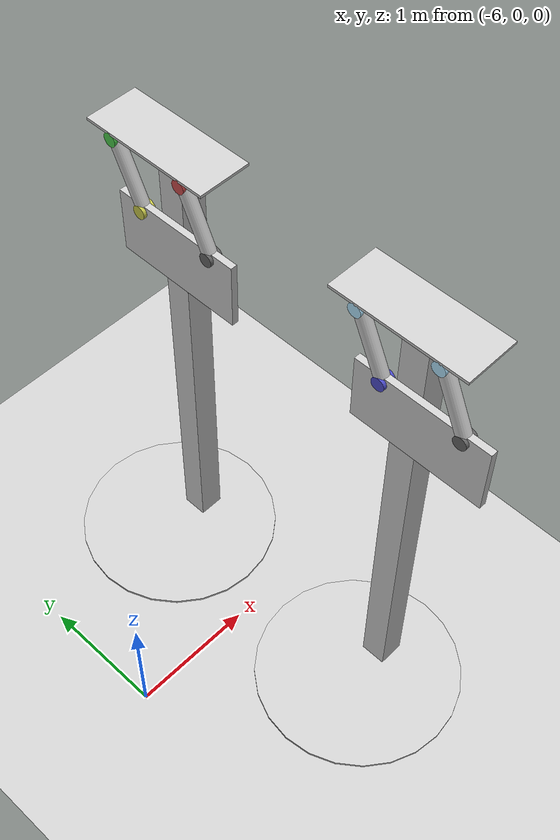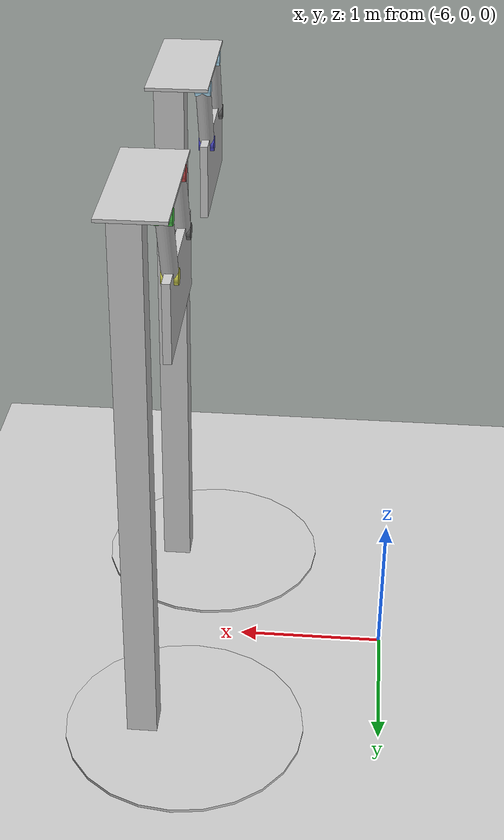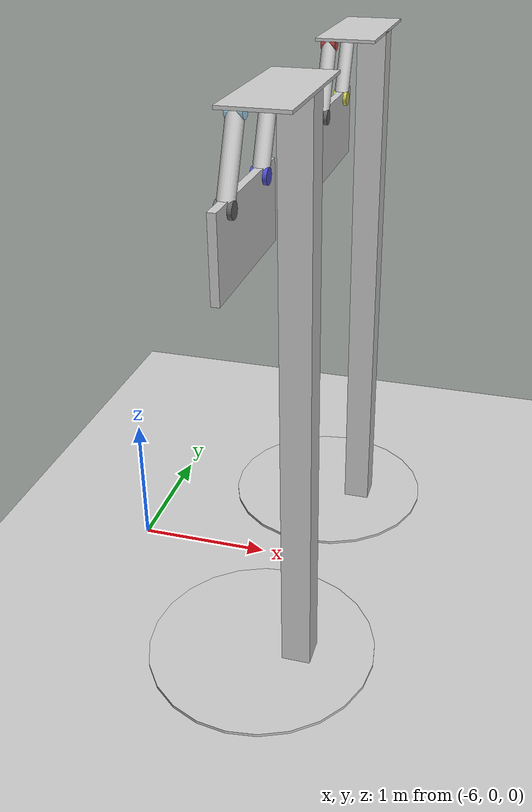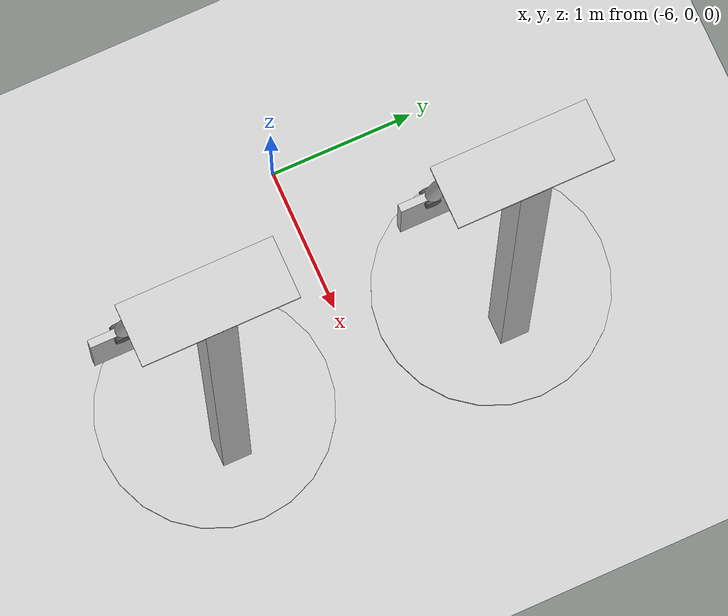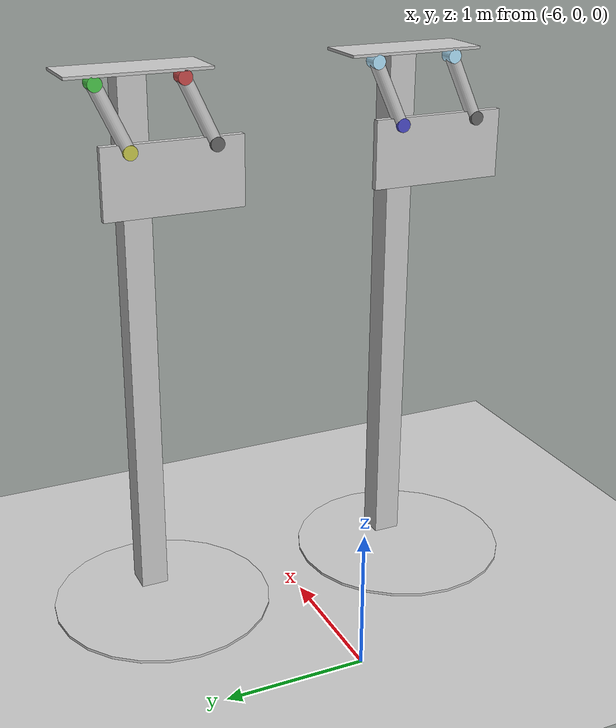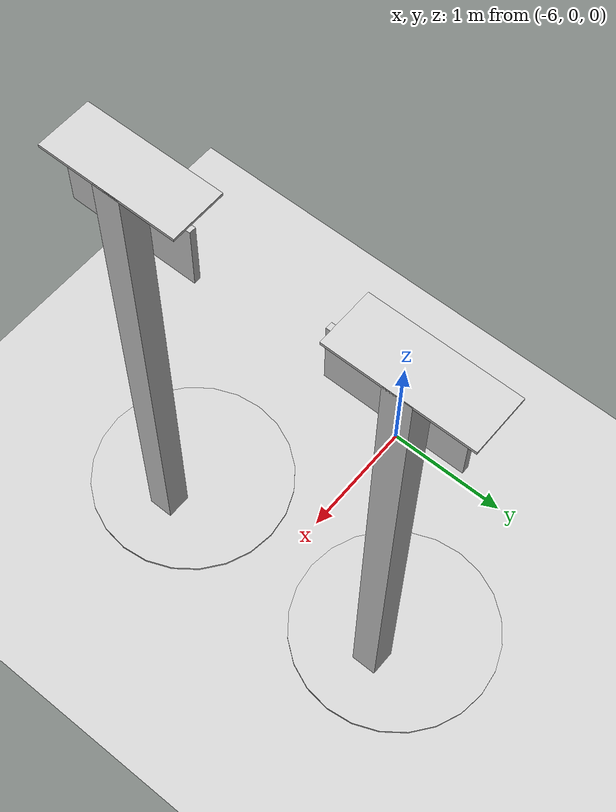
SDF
<sdf version="1.11">
 <world name="harmonic_mimic_mechanisms">
  <physics name="1ms" type="ignored">
   <max_step_size>0.001</max_step_size>
   <real_time_factor>1.0</real_time_factor>
  </physics>
  <plugin filename="gz-sim-physics-system" name="gz::sim::systems::Physics"/>
  <plugin filename="gz-sim-user-commands-system" name="gz::sim::systems::UserCommands"/>
  <plugin filename="gz-sim-scene-broadcaster-system" name="gz::sim::systems::SceneBroadcaster"/>
  <plugin filename="gz-sim-apply-link-wrench-system" name="gz::sim::systems::ApplyLinkWrench"/>
  <light type="directional" name="sun">
   <pose>0 0 10 0 0 0</pose>
   <diffuse>0.8 0.8 0.8 1</diffuse>
   <specular>0.2 0.2 0.2 1</specular>
   <attenuation>
    <range>1000</range>
    <constant>0.9</constant>
    <linear>0.01</linear>
    <quadratic>0.001</quadratic>
   </attenuation>
   <direction>0.5 0.1 -0.9</direction>
  </light>
  <model name="ground_plane">
   <static>true</static>
   <link name="link">
    <collision name="collision">
     <geometry><plane><normal>0 0 1</normal><size>100 100</size></plane></geometry>
    </collision>
    <visual name="visual">
     <geometry><plane><normal>0 0 1</normal><size>100 100</size></plane></geometry>
     <material>
      <ambient>0.8 0.8 0.8 1</ambient>
      <diffuse>0.8 0.8 0.8 1</diffuse>
      <specular>0.8 0.8 0.8 1</specular>
     </material>
    </visual>
   </link>
  </model>
  <model name="four_bar_linkage_mimic">
   <pose degrees="true">-4.7 -1 0 0 0 180</pose>
   <frame name="base_plate_center" attached_to="base"><pose>0 0 0.01 0 0 0</pose></frame>
   <frame name="base_pole_center" attached_to="base_plate_center"><pose>-0.275 0 1.95 0 0 0</pose></frame>
   <frame name="base_pole_top" attached_to="base_pole_center"><pose>0.1 0 1.95 0 0 0</pose></frame>
   <link name="base">
    <inertial>
     <pose>-0.188749 0 0.75813399999999997 -0.13567899999999999 0 1.5708</pose>
     <mass>2500</mass>
     <inertia><ixx>154.202</ixx><ixy>0</ixy><ixz>0</ixz><iyy>152.286</iyy><iyz>0</iyz><izz>28.8249</izz></inertia>
    </inertial>
    <collision name="col_plate_on_ground">
     <pose relative_to="base_plate_center"/>
     <geometry><cylinder><radius>0.8</radius><length>0.02</length></cylinder></geometry>
    </collision>
    <visual name="vis_plate_on_ground">
     <pose relative_to="base_plate_center"/>
     <geometry><cylinder><radius>0.8</radius><length>0.02</length></cylinder></geometry>
     <material>
      <ambient>0.8 0.8 0.8 1</ambient>
      <diffuse>0.8 0.8 0.8 1</diffuse>
      <specular>0.8 0.8 0.8 1</specular>
     </material>
    </visual>
    <collision name="col_pole">
     <pose relative_to="base_pole_center"/>
     <geometry><box><size>0.2 0.2 3.9</size></box></geometry>
    </collision>
    <visual name="vis_pole">
     <pose relative_to="base_pole_center"/>
     <geometry><box><size>0.2 0.2 3.9</size></box></geometry>
     <material>
      <ambient>0.8 0.8 0.8 1</ambient>
      <diffuse>0.8 0.8 0.8 1</diffuse>
      <specular>0.8 0.8 0.8 1</specular>
     </material>
    </visual>
    <collision name="col_top">
     <pose relative_to="base_pole_top"/>
     <geometry><box><size>0.4 1.0 0.02</size></box></geometry>
    </collision>
    <visual name="vis_top">
     <pose relative_to="base_pole_top"/>
     <geometry><box><size>0.4 1.0 0.02</size></box></geometry>
     <material>
      <ambient>0.8 0.8 0.8 1</ambient>
      <diffuse>0.8 0.8 0.8 1</diffuse>
      <specular>0.8 0.8 0.8 1</specular>
     </material>
    </visual>
   </link>
   <frame name="base_top_left_mount" attached_to="base_pole_top"><pose>0 -0.3 -0.05 0 0 0</pose></frame>
   <frame name="base_top_right_mount" attached_to="base_pole_top"><pose>0 +0.3 -0.05 0 0 0</pose></frame>
   <frame name="upper_left_link_lower_mount" attached_to="upper_left_link"><pose>0 0 0.5 0 0 0</pose></frame>
   <frame name="upper_right_link_lower_mount" attached_to="upper_right_link"><pose>0 0 0.5 0 0 0</pose></frame>
   <link name="upper_left_link">
    <pose degrees="true" relative_to="base_top_left_mount">0.15 0 0 -155 0 0</pose>
    <inertial auto="true"/>
    <collision name="col_upper_joint">
     <pose degrees="true">0 0 0 0 90 0</pose>
     <geometry><cylinder><radius>0.05</radius><length>0.1</length></cylinder></geometry>
    </collision>
    <visual name="vis_upper_joint">
     <pose degrees="true">0 0 0 0 90 0</pose>
     <geometry><cylinder><radius>0.05</radius><length>0.1</length></cylinder></geometry>
     <material>
      <ambient>0.7 0.9 1.0 1</ambient>
      <diffuse>0.7 0.9 1.0 1</diffuse>
      <specular>0.4 0.4 0.4 1</specular>
      <emissive>0.0 0.1 0.1 1</emissive>
     </material>
    </visual>
    <collision name="col_bob">
     <pose degrees="true" relative_to="upper_left_link_lower_mount">0 0 0 0 90 0</pose>
     <geometry><cylinder><radius>0.05</radius><length>0.1</length></cylinder></geometry>
    </collision>
    <visual name="vis_bob">
     <pose degrees="true" relative_to="upper_left_link_lower_mount">0 0 0 0 90 0</pose>
     <geometry><cylinder><radius>0.05</radius><length>0.1</length></cylinder></geometry>
     <material>
      <ambient>0.3 0.3 0.8 1</ambient>
      <diffuse>0.3 0.3 0.8 1</diffuse>
      <specular>0.4 0.4 0.4 1</specular>
      <emissive>0.0 0.0 0.1 1</emissive>
     </material>
    </visual>
    <collision name="col_long_cylinder">
     <pose>0 0 0.25 0 0 0</pose>
     <density>5e3</density>
     <geometry><cylinder><radius>0.05</radius><length>0.5</length></cylinder></geometry>
    </collision>
    <visual name="vis_long_cylinder">
     <pose>0 0 0.25 0 0 0</pose>
     <geometry><cylinder><radius>0.05</radius><length>0.5</length></cylinder></geometry>
     <material>
      <ambient>0.8 0.8 0.8 1</ambient>
      <diffuse>0.8 0.8 0.8 1</diffuse>
      <specular>0.8 0.8 0.8 1</specular>
     </material>
    </visual>
   </link>
   <joint name="upper_left_joint" type="revolute">
    <parent>base</parent>
    <child>upper_left_link</child>
    <axis><xyz>1.0 0 0</xyz></axis>
   </joint>
   <link name="upper_right_link">
    <pose degrees="true" relative_to="base_top_right_mount">0.15 0 0 -155 0 0</pose>
    <inertial auto="true"/>
    <collision name="col_upper_joint">
     <pose degrees="true">0 0 0 0 90 0</pose>
     <geometry><cylinder><radius>0.05</radius><length>0.1</length></cylinder></geometry>
    </collision>
    <visual name="vis_upper_joint">
     <pose degrees="true">0 0 0 0 90 0</pose>
     <geometry><cylinder><radius>0.05</radius><length>0.1</length></cylinder></geometry>
     <material>
      <ambient>0.7 0.9 1.0 1</ambient>
      <diffuse>0.7 0.9 1.0 1</diffuse>
      <specular>0.4 0.4 0.4 1</specular>
      <emissive>0.0 0.1 0.1 1</emissive>
     </material>
    </visual>
    <collision name="col_bob">
     <pose degrees="true" relative_to="upper_right_link_lower_mount">0 0 0 0 90 0</pose>
     <geometry><cylinder><radius>0.05</radius><length>0.1</length></cylinder></geometry>
    </collision>
    <visual name="vis_bob">
     <pose degrees="true" relative_to="upper_right_link_lower_mount">0 0 0 0 90 0</pose>
     <geometry><cylinder><radius>0.05</radius><length>0.1</length></cylinder></geometry>
     <material>
      <ambient>0.4 0.4 0.4 1</ambient>
      <diffuse>0.4 0.4 0.4 1</diffuse>
      <specular>0.4 0.4 0.4 1</specular>
     </material>
    </visual>
    <collision name="col_long_cylinder">
     <pose>0 0 0.25 0 0 0</pose>
     <density>5e3</density>
     <geometry><cylinder><radius>0.05</radius><length>0.5</length></cylinder></geometry>
    </collision>
    <visual name="vis_long_cylinder">
     <pose>0 0 0.25 0 0 0</pose>
     <geometry><cylinder><radius>0.05</radius><length>0.5</length></cylinder></geometry>
     <material>
      <ambient>0.8 0.8 0.8 1</ambient>
      <diffuse>0.8 0.8 0.8 1</diffuse>
      <specular>0.8 0.8 0.8 1</specular>
     </material>
    </visual>
   </link>
   <joint name="upper_right_joint" type="revolute">
    <parent>base</parent>
    <child>upper_right_link</child>
    <axis><xyz>1.0 0 0</xyz><mimic joint="upper_left_joint"><multiplier>1.0</multiplier></mimic></axis>
   </joint>
   <joint name="lower_left_joint" type="revolute">
    <pose degrees="true" relative_to="upper_left_link_lower_mount">0 0 0 -25 0 0</pose>
    <parent>upper_left_link</parent>
    <child>lower_link</child>
    <axis><xyz>1.0 0 0</xyz><mimic joint="upper_left_joint"><multiplier>-1.0</multiplier></mimic></axis>
   </joint>
   <link name="lower_link">
    <pose degrees="true" relative_to="lower_left_joint">0 -0.3 0.2 0 0 0</pose>
    <inertial auto="true"/>
    <collision name="col_box"><geometry><box><size>0.05 1.0 0.5</size></box></geometry></collision>
    <visual name="vis_upper_joint">
     <geometry><box><size>0.05 1.0 0.5</size></box></geometry>
     <material>
      <ambient>0.8 0.8 0.8 1</ambient>
      <diffuse>0.8 0.8 0.8 1</diffuse>
      <specular>0.8 0.8 0.8 1</specular>
     </material>
    </visual>
   </link>
  </model>
  <model name="four_bar_linkage_without_mimic">
   <pose degrees="true">-4.7 1 0 0 0 180</pose>
   <frame name="base_plate_center" attached_to="base"><pose>0 0 0.01 0 0 0</pose></frame>
   <frame name="base_pole_center" attached_to="base_plate_center"><pose>-0.275 0 1.95 0 0 0</pose></frame>
   <frame name="base_pole_top" attached_to="base_pole_center"><pose>0.1 0 1.95 0 0 0</pose></frame>
   <link name="base">
    <inertial>
     <pose>-0.188749 0 0.75813399999999997 -0.13567899999999999 0 1.5708</pose>
     <mass>2500</mass>
     <inertia><ixx>154.202</ixx><ixy>0</ixy><ixz>0</ixz><iyy>152.286</iyy><iyz>0</iyz><izz>28.8249</izz></inertia>
    </inertial>
    <collision name="col_plate_on_ground">
     <pose relative_to="base_plate_center"/>
     <geometry><cylinder><radius>0.8</radius><length>0.02</length></cylinder></geometry>
    </collision>
    <visual name="vis_plate_on_ground">
     <pose relative_to="base_plate_center"/>
     <geometry><cylinder><radius>0.8</radius><length>0.02</length></cylinder></geometry>
     <material>
      <ambient>0.8 0.8 0.8 1</ambient>
      <diffuse>0.8 0.8 0.8 1</diffuse>
      <specular>0.8 0.8 0.8 1</specular>
     </material>
    </visual>
    <collision name="col_pole">
     <pose relative_to="base_pole_center"/>
     <geometry><box><size>0.2 0.2 3.9</size></box></geometry>
    </collision>
    <visual name="vis_pole">
     <pose relative_to="base_pole_center"/>
     <geometry><box><size>0.2 0.2 3.9</size></box></geometry>
     <material>
      <ambient>0.8 0.8 0.8 1</ambient>
      <diffuse>0.8 0.8 0.8 1</diffuse>
      <specular>0.8 0.8 0.8 1</specular>
     </material>
    </visual>
    <collision name="col_top">
     <pose relative_to="base_pole_top"/>
     <geometry><box><size>0.4 1.0 0.02</size></box></geometry>
    </collision>
    <visual name="vis_top">
     <pose relative_to="base_pole_top"/>
     <geometry><box><size>0.4 1.0 0.02</size></box></geometry>
     <material>
      <ambient>0.8 0.8 0.8 1</ambient>
      <diffuse>0.8 0.8 0.8 1</diffuse>
      <specular>0.8 0.8 0.8 1</specular>
     </material>
    </visual>
   </link>
   <frame name="base_top_left_mount" attached_to="base_pole_top"><pose>0 -0.3 -0.05 0 0 0</pose></frame>
   <frame name="base_top_right_mount" attached_to="base_pole_top"><pose>0 +0.3 -0.05 0 0 0</pose></frame>
   <frame name="upper_left_link_lower_mount" attached_to="upper_left_link"><pose>0 0 0.5 0 0 0</pose></frame>
   <frame name="upper_right_link_lower_mount" attached_to="upper_right_link"><pose>0 0 0.5 0 0 0</pose></frame>
   <link name="upper_left_link">
    <pose degrees="true" relative_to="base_top_left_mount">0.15 0 0 -155 0 0</pose>
    <inertial auto="true"/>
    <collision name="col_upper_joint">
     <pose degrees="true">0 0 0 0 90 0</pose>
     <geometry><cylinder><radius>0.05</radius><length>0.1</length></cylinder></geometry>
    </collision>
    <visual name="vis_upper_joint">
     <pose degrees="true">0 0 0 0 90 0</pose>
     <geometry><cylinder><radius>0.05</radius><length>0.1</length></cylinder></geometry>
     <material>
      <ambient>0.3 0.8 0.3 1</ambient>
      <diffuse>0.3 0.8 0.3 1</diffuse>
      <specular>0.4 0.4 0.4 1</specular>
      <emissive>0.0 0.1 0.0 1</emissive>
     </material>
    </visual>
    <collision name="col_bob">
     <pose degrees="true" relative_to="upper_left_link_lower_mount">0 0 0 0 90 0</pose>
     <geometry><cylinder><radius>0.05</radius><length>0.1</length></cylinder></geometry>
    </collision>
    <visual name="vis_bob">
     <pose degrees="true" relative_to="upper_left_link_lower_mount">0 0 0 0 90 0</pose>
     <geometry><cylinder><radius>0.05</radius><length>0.1</length></cylinder></geometry>
     <material>
      <ambient>0.8 0.8 0.3 1</ambient>
      <diffuse>0.8 0.8 0.3 1</diffuse>
      <specular>0.4 0.4 0.4 1</specular>
      <emissive>0.1 0.1 0.0 1</emissive>
     </material>
    </visual>
    <collision name="col_long_cylinder">
     <pose>0 0 0.25 0 0 0</pose>
     <density>5e3</density>
     <geometry><cylinder><radius>0.05</radius><length>0.5</length></cylinder></geometry>
    </collision>
    <visual name="vis_long_cylinder">
     <pose>0 0 0.25 0 0 0</pose>
     <geometry><cylinder><radius>0.05</radius><length>0.5</length></cylinder></geometry>
     <material>
      <ambient>0.8 0.8 0.8 1</ambient>
      <diffuse>0.8 0.8 0.8 1</diffuse>
      <specular>0.8 0.8 0.8 1</specular>
     </material>
    </visual>
   </link>
   <joint name="upper_left_joint" type="revolute">
    <parent>base</parent>
    <child>upper_left_link</child>
    <axis><xyz>1.0 0 0</xyz></axis>
   </joint>
   <link name="upper_right_link">
    <pose degrees="true" relative_to="base_top_right_mount">0.15 0 0 -155 0 0</pose>
    <inertial auto="true"/>
    <collision name="col_upper_joint">
     <pose degrees="true">0 0 0 0 90 0</pose>
     <geometry><cylinder><radius>0.05</radius><length>0.1</length></cylinder></geometry>
    </collision>
    <visual name="vis_upper_joint">
     <pose degrees="true">0 0 0 0 90 0</pose>
     <geometry><cylinder><radius>0.05</radius><length>0.1</length></cylinder></geometry>
     <material>
      <ambient>0.8 0.3 0.3 1</ambient>
      <diffuse>0.8 0.3 0.3 1</diffuse>
      <specular>0.4 0.4 0.4 1</specular>
      <emissive>0.1 0.0 0.0 1</emissive>
     </material>
    </visual>
    <collision name="col_bob">
     <pose degrees="true" relative_to="upper_right_link_lower_mount">0 0 0 0 90 0</pose>
     <geometry><cylinder><radius>0.05</radius><length>0.1</length></cylinder></geometry>
    </collision>
    <visual name="vis_bob">
     <pose degrees="true" relative_to="upper_right_link_lower_mount">0 0 0 0 90 0</pose>
     <geometry><cylinder><radius>0.05</radius><length>0.1</length></cylinder></geometry>
     <material>
      <ambient>0.4 0.4 0.4 1</ambient>
      <diffuse>0.4 0.4 0.4 1</diffuse>
      <specular>0.4 0.4 0.4 1</specular>
     </material>
    </visual>
    <collision name="col_long_cylinder">
     <pose>0 0 0.25 0 0 0</pose>
     <density>5e3</density>
     <geometry><cylinder><radius>0.05</radius><length>0.5</length></cylinder></geometry>
    </collision>
    <visual name="vis_long_cylinder">
     <pose>0 0 0.25 0 0 0</pose>
     <geometry><cylinder><radius>0.05</radius><length>0.5</length></cylinder></geometry>
     <material>
      <ambient>0.8 0.8 0.8 1</ambient>
      <diffuse>0.8 0.8 0.8 1</diffuse>
      <specular>0.8 0.8 0.8 1</specular>
     </material>
    </visual>
   </link>
   <joint name="upper_right_joint" type="revolute">
    <parent>base</parent>
    <child>upper_right_link</child>
    <axis><xyz>1.0 0 0</xyz></axis>
   </joint>
   <joint name="lower_left_joint" type="revolute">
    <pose degrees="true" relative_to="upper_left_link_lower_mount">0 0 0 -25 0 0</pose>
    <parent>upper_left_link</parent>
    <child>lower_link</child>
    <axis><xyz>1.0 0 0</xyz></axis>
   </joint>
   <link name="lower_link">
    <pose degrees="true" relative_to="lower_left_joint">0 -0.3 0.2 0 0 0</pose>
    <inertial auto="true"/>
    <collision name="col_box"><geometry><box><size>0.05 1.0 0.5</size></box></geometry></collision>
    <visual name="vis_upper_joint">
     <geometry><box><size>0.05 1.0 0.5</size></box></geometry>
     <material>
      <ambient>0.8 0.8 0.8 1</ambient>
      <diffuse>0.8 0.8 0.8 1</diffuse>
      <specular>0.8 0.8 0.8 1</specular>
     </material>
    </visual>
   </link>
  </model>
 </world>
</sdf>
